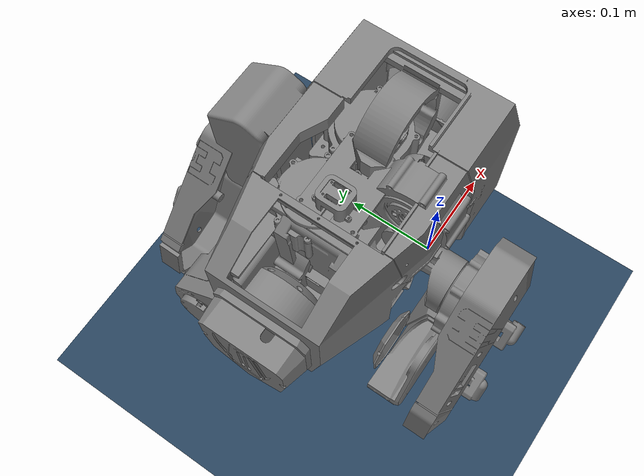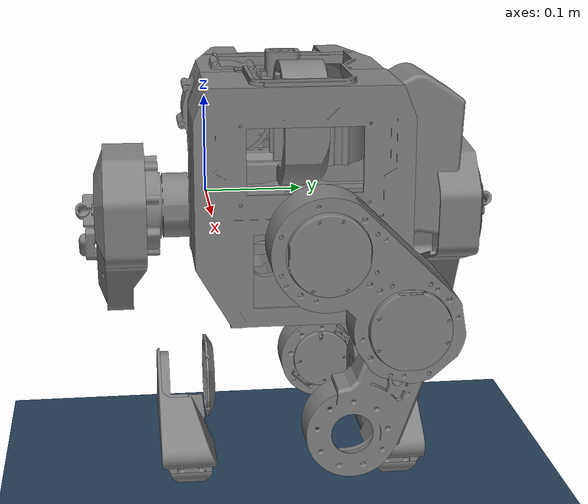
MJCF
<mujoco model="BDX-R">
  <compiler angle="radian"/>

  <asset>
    <mesh name="base_link" content_type="model/stl" file="meshes/base_link.stl" scale="0.001 0.001 0.001"/>
    <mesh name="Right_Hip_Yaw_Motor" content_type="model/stl" file="meshes/Right_Hip_Yaw_Motor.stl" scale="0.001 0.001 0.001"/>
    <mesh name="Left_Hip_Yaw_Motor" content_type="model/stl" file="meshes/Left_Hip_Yaw_Motor.stl" scale="0.001 0.001 0.001"/>
    <mesh name="BottomCover" content_type="model/stl" file="meshes/BottomCover.stl" scale="0.001 0.001 0.001"/>
    <mesh name="BackFrame" content_type="model/stl" file="meshes/BackFrame.stl" scale="0.001 0.001 0.001"/>
    <mesh name="BackCover" content_type="model/stl" file="meshes/BackCover.stl" scale="0.001 0.001 0.001"/>
    <mesh name="FrontCover" content_type="model/stl" file="meshes/FrontCover.stl" scale="0.001 0.001 0.001"/>
    <mesh name="TopLeftCover" content_type="model/stl" file="meshes/TopLeftCover.stl" scale="0.001 0.001 0.001"/>
    <mesh name="TopRightCover" content_type="model/stl" file="meshes/TopRightCover.stl" scale="0.001 0.001 0.001"/>
    <mesh name="IMU_Mount" content_type="model/stl" file="meshes/IMU_Mount.stl" scale="0.001 0.001 0.001"/>
    <mesh name="Jetson_Mount" content_type="model/stl" file="meshes/Jetson_Mount.stl" scale="0.001 0.001 0.001"/>
    <mesh name="Neck_Motor" content_type="model/stl" file="meshes/Neck_Motor.stl" scale="0.001 0.001 0.001"/>
    <mesh name="Battery" content_type="model/stl" file="meshes/Battery.stl" scale="0.001 0.001 0.001"/>
    <mesh name="Antenna" content_type="model/stl" file="meshes/Antenna.stl" scale="0.001 0.001 0.001"/>
    <mesh name="AntennaBox" content_type="model/stl" file="meshes/AntennaBox.stl" scale="0.001 0.001 0.001"/>
    <mesh name="Right_Hip_Roll_Motor" content_type="model/stl" file="meshes/Right_Hip_Roll_Motor.stl" scale="0.001 0.001 0.001"/>
    <mesh name="Left_Hip_Roll_Motor" content_type="model/stl" file="meshes/Left_Hip_Roll_Motor.stl" scale="0.001 0.001 0.001"/>
    <mesh name="Right_Hip_Connector" content_type="model/stl" file="meshes/Right_Hip_Connector.stl" scale="0.001 0.001 0.001"/>
    <mesh name="Left_Hip_Connector" content_type="model/stl" file="meshes/Left_Hip_Connector.stl" scale="0.001 0.001 0.001"/>
    <mesh name="Right_Upper_Leg" content_type="model/stl" file="meshes/Right_Upper_Leg.stl" scale="0.001 0.001 0.001"/>
    <mesh name="Right_Hip_Pitch_Motor" content_type="model/stl" file="meshes/Right_Hip_Pitch_Motor.stl" scale="0.001 0.001 0.001"/>
    <mesh name="Right_Knee_Motor" content_type="model/stl" file="meshes/Right_Knee_Motor.stl" scale="0.001 0.001 0.001"/>
    <mesh name="Right_Lower_Leg" content_type="model/stl" file="meshes/Right_Lower_Leg.stl" scale="0.001 0.001 0.001"/>
    <mesh name="Right_Ankle_Motor" content_type="model/stl" file="meshes/Right_Ankle_Motor.stl" scale="0.001 0.001 0.001"/>
    <mesh name="RightAnkleCover" content_type="model/stl" file="meshes/RightAnkleCover.stl" scale="0.001 0.001 0.001"/>
    <mesh name="Right_Foot" content_type="model/stl" file="meshes/Right_Foot.stl" scale="0.001 0.001 0.001"/>
    <mesh name="RightFootPad" content_type="model/stl" file="meshes/RightFootPad.stl" scale="0.001 0.001 0.001"/>
    <mesh name="RightFootCover" content_type="model/stl" file="meshes/RightFootCover.stl" scale="0.001 0.001 0.001"/>
    <mesh name="RightBottomLegCover" content_type="model/stl" file="meshes/RightBottomLegCover.stl" scale="0.001 0.001 0.001"/>
    <mesh name="RightUpperLegCover" content_type="model/stl" file="meshes/RightUpperLegCover.stl" scale="0.001 0.001 0.001"/>
    <mesh name="RightLegUpperPlug" content_type="model/stl" file="meshes/RightLegUpperPlug.stl" scale="0.001 0.001 0.001"/>
    <mesh name="RightLegBottomPlug" content_type="model/stl" file="meshes/RightLegBottomPlug.stl" scale="0.001 0.001 0.001"/>
    <mesh name="Left_Hip_Pitch_Motor" content_type="model/stl" file="meshes/Left_Hip_Pitch_Motor.stl" scale="0.001 0.001 0.001"/>
    <mesh name="Left_Upper_Leg" content_type="model/stl" file="meshes/Left_Upper_Leg.stl" scale="0.001 0.001 0.001"/>
    <mesh name="Left_Knee_Motor" content_type="model/stl" file="meshes/Left_Knee_Motor.stl" scale="0.001 0.001 0.001"/>
    <mesh name="Left_Lower_Leg" content_type="model/stl" file="meshes/Left_Lower_Leg.stl" scale="0.001 0.001 0.001"/>
    <mesh name="Left_Ankle_Motor" content_type="model/stl" file="meshes/Left_Ankle_Motor.stl" scale="0.001 0.001 0.001"/>
    <mesh name="Left_Foot" content_type="model/stl" file="meshes/Left_Foot.stl" scale="0.001 0.001 0.001"/>
    <mesh name="LeftFootPad" content_type="model/stl" file="meshes/LeftFootPad.stl" scale="0.001 0.001 0.001"/>
    <mesh name="LeftFootCover" content_type="model/stl" file="meshes/LeftFootCover.stl" scale="0.001 0.001 0.001"/>
    <mesh name="LeftAnkleCover" content_type="model/stl" file="meshes/LeftAnkleCover.stl" scale="0.001 0.001 0.001"/>
    <mesh name="LeftBottomLegCover" content_type="model/stl" file="meshes/LeftBottomLegCover.stl" scale="0.001 0.001 0.001"/>
    <mesh name="LeftUpperLegCover" content_type="model/stl" file="meshes/LeftUpperLegCover.stl" scale="0.001 0.001 0.001"/>
    <mesh name="LeftLegBottomPlug" content_type="model/stl" file="meshes/LeftLegBottomPlug.stl" scale="0.001 0.001 0.001"/>
    <mesh name="LeftLegUpperPlug" content_type="model/stl" file="meshes/LeftLegUpperPlug.stl" scale="0.001 0.001 0.001"/>
  </asset>

  <worldbody>
  <body name="Base_Link" pos="0.0 0.0 0.0">
    <joint type="free" name="free_joint"/>
    <geom type="mesh" mesh="base_link"/>
    <geom type="mesh" mesh="Right_Hip_Yaw_Motor"/>
    <geom type="mesh" mesh="Left_Hip_Yaw_Motor"/>
    <geom type="mesh" mesh="BottomCover"/>
    <geom type="mesh" mesh="base_link" group="3" name="base_collision" />
    <geom type="mesh" mesh="BackFrame"/>
    <geom type="mesh" mesh="BackCover"/>
    <geom type="mesh" mesh="Antenna"/>
    <geom type="mesh" mesh="AntennaBox"/>
    <geom type="mesh" mesh="FrontCover"/>
    <geom type="mesh" mesh="TopLeftCover"/>
    <geom type="mesh" mesh="TopRightCover"/>
    <geom type="mesh" mesh="IMU_Mount"/>
    <geom type="mesh" mesh="Jetson_Mount"/>
    <geom type="mesh" mesh="Neck_Motor"/>
    <geom type="mesh" mesh="Battery"/>
    <body name="Right_Hip_Roll_Motor" pos="-0.025798 0.037202 0.043944">
      <inertial pos="-0.00306484 -0.00779299 -0.0589804" quat="0.999289 -0.0216466 0.00612604 -0.0302708" mass="1.07135" diaginertia="0.002347 0.00214453 0.000904467"/>
      <joint name="Right_Hip_Yaw" pos="0 0 0" axis="0 0 1" range="-0.5 0.35" actuatorfrcrange="-42 42"/>
      <geom pos="0.025798 -0.037202 -0.043944" type="mesh" mesh="Right_Hip_Roll_Motor"/>
      <body name="Right_Hip_Connector" pos="0.018 -0.0125 -0.064284">
        <inertial pos="0.00209646 -0.034662 0.00127164" quat="0.701917 0.696723 -0.0981694 -0.110696" mass="0.155347" diaginertia="0.000184778 0.000167005 7.02171e-05"/>
        <joint name="Right_Hip_Roll" pos="0 0 0" axis="-1 0 0" range="-0.3 0.3" actuatorfrcrange="-42 42"/>
        <geom pos="0.007798 -0.024702 0.02034" quat="1 0 0 0" type="mesh" mesh="Right_Hip_Connector"/>
        <body name="Right_Hip_Pitch_Motor" pos="-0.008647 -0.07125 0.001341">
          <inertial pos="-0.040231 -0.0321881 -0.0241217" quat="0.454521 0.437966 0.529183 0.567065" mass="2.54514" diaginertia="0.0169616 0.014935 0.00789867"/>
          <joint name="Right_Hip_Pitch" pos="0 0 0" axis="0 -1 0" range="-1 0.5" actuatorfrcrange="-42 42"/>
          <geom pos="0.016445 0.046548 0.018999" quat="1 0 0 0" type="mesh" mesh="Right_Hip_Pitch_Motor"/>
          <geom pos="0.016445 0.046548 0.018999" quat="1 0 0 0" type="mesh" mesh="Right_Upper_Leg"/>
          <geom pos="0.016445 0.046548 0.018999" quat="1 0 0 0" type="mesh" mesh="Right_Knee_Motor"/>
          <geom pos="0.016445 0.046548 0.018999" quat="1 0 0 0" type="mesh" mesh="RightBottomLegCover"/>
          <geom pos="0.016445 0.046548 0.018999" quat="1 0 0 0" type="mesh" mesh="RightLegBottomPlug"/>
          <geom pos="0.016445 0.046548 0.018999" quat="1 0 0 0" type="mesh" mesh="RightUpperLegCover"/>
          <geom pos="0.016445 0.046548 0.018999" quat="1 0 0 0" type="mesh" mesh="RightLegUpperPlug"/>
          <body name="Right_Lower_Leg" pos="-0.079193 0 -0.077823">
            <inertial pos="0.0439964 0.0310957 -0.0887868" quat="0.215223 0.66964 0.634892 0.319646" mass="0.785759" diaginertia="0.00376583 0.00297417 0.00118644"/>
            <joint name="Right_Knee" pos="0 0 0" axis="0 -1 0" range="-1.2 0.95" actuatorfrcrange="-42 42"/>
            <geom pos="0.095638 0.046548 0.096822" quat="1 0 0 0" type="mesh" mesh="Right_Lower_Leg"/>
            <geom pos="0.095638 0.046548 0.096822" quat="1 0 0 0" type="mesh" mesh="Right_Ankle_Motor"/>
            <geom pos="0.095638 0.046548 0.096822" quat="1 0 0 0" type="mesh" mesh="RightAnkleCover"/>
            <body name="Right_Foot" pos="0.045364 0.00534 -0.12999">
              <inertial pos="0.0145127 -0.000397488 -0.0274648" quat="0.317451 0.603212 0.496644 0.537313" mass="0.292365" diaginertia="0.00234065 0.00201227 0.000701132"/>
              <joint name="Right_Ankle" pos="0 0 0" axis="0 -1 0" range="-1.3 0.85" actuatorfrcrange="-11.9 11.9"/>
              <geom pos="0.050274 0.041208 0.226812" quat="1 0 0 0" type="mesh" mesh="Right_Foot"/>
              <geom pos="0.050274 0.041208 0.226812" quat="1 0 0 0" type="mesh" mesh="RightFootPad"/>
              <geom pos="0.050274 0.041208 0.226812" quat="1 0 0 0" type="mesh" mesh="RightFootCover"/>
              <geom pos="0.050274 0.041208 0.226812" quat="1 0 0 0" type="mesh" group="3" name="right_foot_collision" mesh="RightFootPad"/>
            </body>
          </body>
        </body>
      </body>
    </body>
    <body name="Left_Hip_Roll_Motor" pos="-0.025798 0.137202 0.043944">
      <inertial pos="-0.00306484 0.00779333 -0.0589804" quat="0.999289 0.0216466 0.00612604 0.0302708" mass="1.07135" diaginertia="0.002347 0.00214453 0.000904467"/>
      <joint name="Left_Hip_Yaw" pos="0 0 0" axis="0 0 1" range="-0.5 0.35" actuatorfrcrange="-42 42"/>
      <geom pos="0.025798 -0.137202 -0.043944" type="mesh" mesh="Left_Hip_Roll_Motor"/>
      <body name="Left_Hip_Connector" pos="0.018 0.0125 -0.064284">
        <inertial pos="0.00209646 0.0346624 0.00127164" quat="0.696723 0.701917 0.110696 0.0981694" mass="0.155347" diaginertia="0.000184778 0.000167005 7.02171e-05"/>
        <joint name="Left_Hip_Roll" pos="0 0 0" axis="1 0 0" range="-0.3 0.3" actuatorfrcrange="-42 42"/>
        <geom pos="0.007798 -0.149702 0.02034" quat="1 0 0 0" type="mesh" mesh="Left_Hip_Connector"/>
        <body name="Left_Hip_Pitch_Motor" pos="-0.008647 0.07125 0.001341">
          <inertial pos="-0.0174647 -0.0251193 -0.00876211" quat="0.00455484 0.5422 0.433489 0.719782" mass="2.54514" diaginertia="0.0154414 0.0138946 0.00916379"/>
          <joint name="Left_Hip_Pitch" pos="0 0 0" axis="0 -1 0" range="-0.5 1" actuatorfrcrange="-42 42"/>
          <geom pos="0.016445 -0.220952 0.018999" quat="1 0 0 0" type="mesh" mesh="Left_Hip_Pitch_Motor"/>
          <geom pos="0.016445 -0.220952 0.018999" quat="1 0 0 0" type="mesh" mesh="Left_Upper_Leg"/>
          <geom pos="0.016445 -0.220952 0.018999" quat="1 0 0 0" type="mesh" mesh="Left_Knee_Motor"/>
          <geom pos="0.016445 -0.220952 0.018999" quat="1 0 0 0" type="mesh" mesh="LeftBottomLegCover"/>
          <geom pos="0.016445 -0.220952 0.018999" quat="1 0 0 0" type="mesh" mesh="LeftLegBottomPlug"/>
          <geom pos="0.016445 -0.220952 0.018999" quat="1 0 0 0" type="mesh" mesh="LeftUpperLegCover"/>
          <geom pos="0.016445 -0.220952 0.018999" quat="1 0 0 0" type="mesh" mesh="LeftLegUpperPlug"/>
          <body name="Left_Lower_Leg" pos="-0.079193 -0.0003 -0.077823">
            <inertial pos="0.0395886 0.00207009 -0.0835681" quat="0.417019 -0.21659 -0.277101 0.838092" mass="0.775759" diaginertia="0.00317379 0.00265199 0.001083"/>
            <joint name="Left_Knee" pos="0 0 0" axis="0 -1 0" range="-0.95 1.2" actuatorfrcrange="-42 42"/>
            <geom pos="0.095638 -0.220652 0.096822" quat="1 0 0 0" type="mesh" mesh="Left_Lower_Leg"/>
            <geom pos="0.095638 -0.220652 0.096822" quat="1 0 0 0" type="mesh" mesh="Left_Ankle_Motor"/>
            <geom pos="0.095638 -0.220652 0.096822" quat="1 0 0 0" type="mesh" mesh="LeftAnkleCover"/>
            <body name="Left_Foot" pos="0.045372 -0.00534 -0.130013">
              <inertial pos="0.0121904 -0.00380556 -0.0293989" quat="0.417786 0.661957 0.417729 0.461271" mass="0.282365" diaginertia="0.00227004 0.00207882 0.000724381"/>
              <joint name="Left_Ankle" pos="0 0 0" axis="0 -1 0" range="-0.85 1.3" actuatorfrcrange="-11.9 11.9"/>
              <geom pos="0.050266 -0.215312 0.226835" quat="1 0 0 0" type="mesh" mesh="Left_Foot"/>
              <geom pos="0.050266 -0.215312 0.226835" quat="1 0 0 0" type="mesh" mesh="LeftFootPad"/>
              <geom pos="0.050266 -0.215312 0.226835" quat="1 0 0 0" type="mesh" mesh="LeftFootCover"/>
              <geom pos="0.050266 -0.215312 0.226835" quat="1 0 0 0" type="mesh" group = "3" name="left_foot_collision" mesh="LeftFootPad"/>
            </body>
          </body>
        </body>
      </body>
    </body>
  </body>
  </worldbody>

  <visual>
      <headlight diffuse="0.6 0.6 0.6" ambient="0.3 0.3 0.3" specular="0 0 0"/>
      <rgba haze="0.15 0.25 0.35 1"/>
      <global azimuth="120" elevation="-20"/>
  </visual>

  <asset>
      <texture type="skybox" builtin="gradient" rgb1="0.3 0.5 0.7" rgb2="0 0 0" width="512" height="3072"/>
      <texture type="2d" name="groundplane" builtin="checker" mark="edge" rgb1="0.2 0.3 0.4" rgb2="0.1 0.2 0.3"
                markrgb="0.8 0.8 0.8" width="300" height="300"/>
      <material name="groundplane" texture="groundplane" texuniform="true" texrepeat="5 5" reflectance="0.2"/>
  </asset>

  <worldbody>
      <light pos="0 0 1.5" dir="0 0 -1" directional="true"/>
      <geom name="floor" pos="0 0 -0.36" size="0 0 0.01" type="plane" material="groundplane" conaffinity="1"/>
  </worldbody>
</mujoco>
